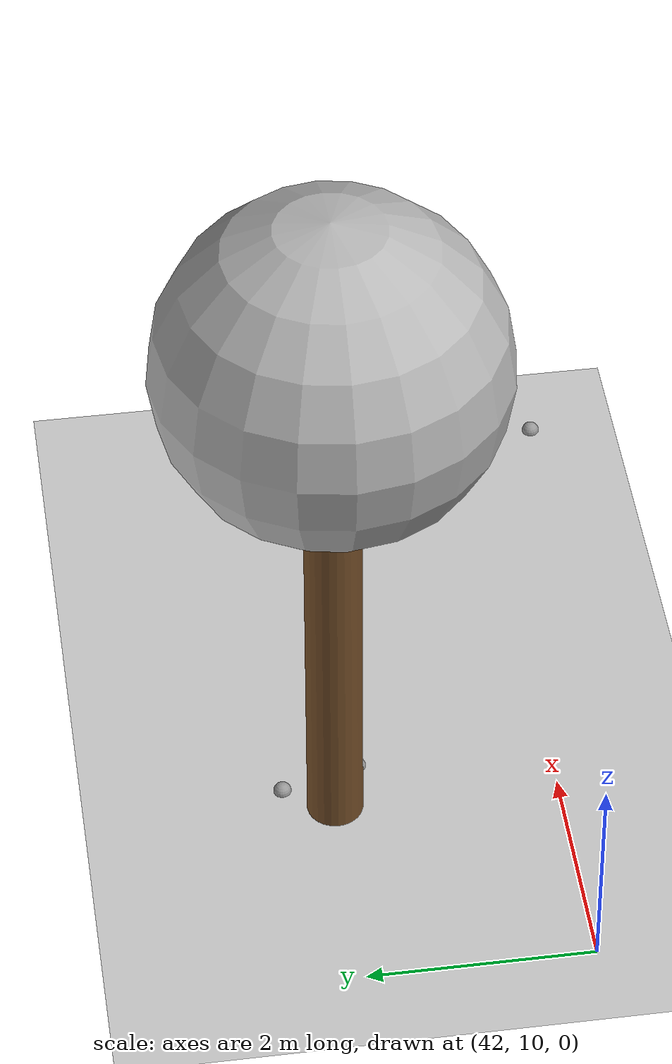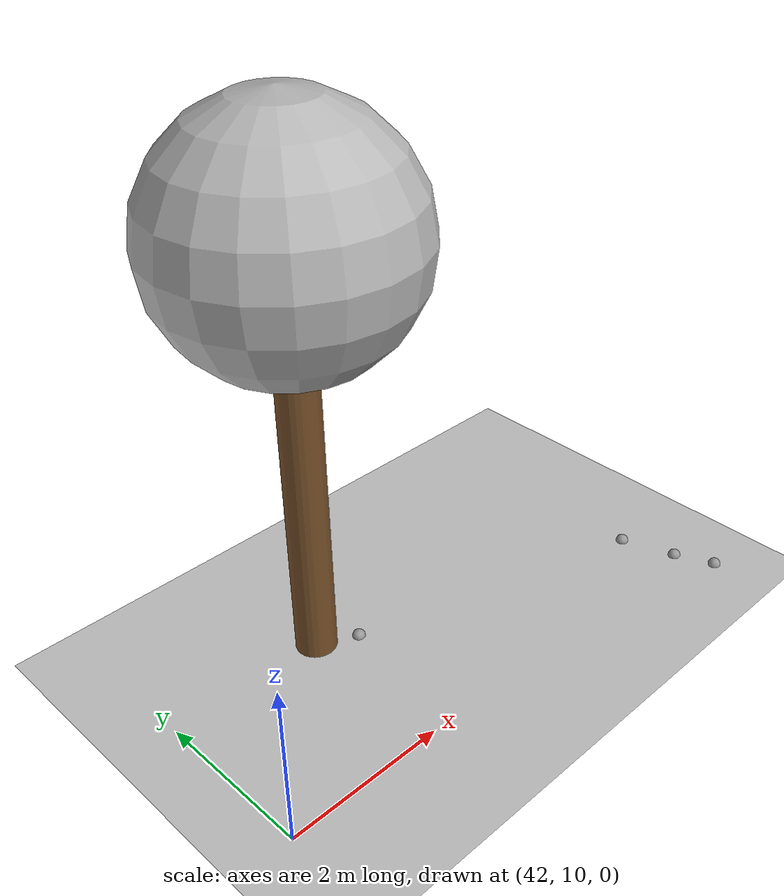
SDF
<sdf version="1.7">
 <world name="default">
  <model name="ground_plane">
   <static>1</static>
   <link name="link">
    <collision name="collision">
     <geometry><plane><normal>0 0 1</normal><size>100 100</size></plane></geometry>
     <surface>
      <contact><collide_bitmask>65535</collide_bitmask></contact>
      <friction><ode><mu>100</mu><mu2>50</mu2></ode></friction>
     </surface>
    </collision>
    <visual name="visual">
     <cast_shadows>0</cast_shadows>
     <geometry><plane><normal>0 0 1</normal><size>100 100</size></plane></geometry>
     <material>
      <script><uri>file://media/materials/scripts/gazebo.material</uri><name>Gazebo/Grey</name></script>
     </material>
    </visual>
   </link>
  </model>
  <model name="tree_simple_64">
   <static>1</static>
   <link name="link">
    <pose>0 0 0.1 0 -0 0</pose>
    <inertial>
     <mass>666</mass>
     <inertia>
      <ixx>0.0861167</ixx>
      <ixy>0</ixy>
      <ixz>0</ixz>
      <iyy>0.0861167</iyy>
      <iyz>0</iyz>
      <izz>0.0861167</izz>
     </inertia>
    </inertial>
    <collision name="collision_trunk">
     <pose>0 0 2 0 -0 0</pose>
     <geometry><cylinder><radius>0.25</radius><length>4</length></cylinder></geometry>
     <surface>
      <contact>
       <poissons_ratio>0.347</poissons_ratio>
       <elastic_modulus>8.8e+09</elastic_modulus>
       <ode><kp>100000</kp><kd>100</kd><max_vel>100</max_vel><min_depth>0.001</min_depth></ode>
      </contact>
      <friction>
       <torsional>
        <coefficient>1</coefficient>
        <use_patch_radius>0</use_patch_radius>
        <surface_radius>0.01</surface_radius>
       </torsional>
      </friction>
     </surface>
    </collision>
    <collision name="collision_treetop">
     <pose>0 0 5.2 0 -0 0</pose>
     <geometry><sphere><radius>1.5</radius></sphere></geometry>
     <surface>
      <contact>
       <poissons_ratio>0.347</poissons_ratio>
       <elastic_modulus>8.8e+09</elastic_modulus>
       <ode><kp>100000</kp><kd>100</kd><max_vel>100</max_vel><min_depth>0.001</min_depth></ode>
      </contact>
      <friction>
       <torsional>
        <coefficient>1</coefficient>
        <use_patch_radius>0</use_patch_radius>
        <surface_radius>0.01</surface_radius>
       </torsional>
      </friction>
     </surface>
    </collision>
    <visual name="trunk">
     <pose>0 0 2 0 -0 0</pose>
     <geometry><cylinder><radius>0.25</radius><length>4</length></cylinder></geometry>
     <material>
      <script>
       <uri>model://tree_simple/scripts</uri>
       <uri>model://tree_simple/materials/textures</uri>
       <name>TreeSimple/Trunk</name>
      </script>
     </material>
    </visual>
    <visual name="treetop">
     <pose>0 0 5.2 0 -0 0</pose>
     <geometry><sphere><radius>1.5</radius></sphere></geometry>
     <material>
      <script>
       <uri>model://tree_simple/scripts</uri>
       <uri>model://tree_simple/materials/textures</uri>
       <name>TreeSimple/Treetop</name>
      </script>
     </material>
    </visual>
   </link>
   <pose>44 12 -0.1 0 -0 0</pose>
  </model>
  <model name="seed_black_46">
   <link name="link">
    <inertial>
     <mass>1</mass>
     <inertia><ixx>0.1</ixx><ixy>0</ixy><ixz>0</ixz><iyy>0.1</iyy><iyz>0</iyz><izz>0.1</izz></inertia>
    </inertial>
    <visual name="visual">
     <geometry><sphere><radius>0.08</radius></sphere></geometry>
     <material>
      <script><name>Gazebo/Grey</name><uri>file://media/materials/scripts/gazebo.material</uri></script>
      <shader type="pixel"><normal_map>__default__</normal_map></shader>
      <ambient>0 0 0 1</ambient>
      <diffuse>0.7 0.7 0.7 1</diffuse>
      <specular>0.01 0.01 0.01 1</specular>
      <emissive>0 0 0 1</emissive>
     </material>
    </visual>
    <collision name="collision">
     <geometry><sphere><radius>0.0005</radius></sphere></geometry>
     <surface>
      <friction>
       <ode><mu>1</mu><mu2>1</mu2><fdir1>0 0 0</fdir1><slip1>0</slip1><slip2>0</slip2></ode>
       <torsional>
        <coefficient>1</coefficient>
        <patch_radius>0</patch_radius>
        <surface_radius>0</surface_radius>
        <use_patch_radius>1</use_patch_radius>
        <ode><slip>0</slip></ode>
       </torsional>
      </friction>
      <bounce><restitution_coefficient>0</restitution_coefficient><threshold>1e+06</threshold></bounce>
      <contact>
       <collide_without_contact>0</collide_without_contact>
       <collide_without_contact_bitmask>1</collide_without_contact_bitmask>
       <collide_bitmask>1</collide_bitmask>
       <ode>
        <soft_cfm>0</soft_cfm>
        <soft_erp>0.2</soft_erp>
        <kp>1e+13</kp>
        <kd>1</kd>
        <max_vel>0.01</max_vel>
        <min_depth>0</min_depth>
       </ode>
       <bullet>
        <split_impulse>1</split_impulse>
        <split_impulse_penetration_threshold>-0.01</split_impulse_penetration_threshold>
        <soft_cfm>0</soft_cfm>
        <soft_erp>0.2</soft_erp>
        <kp>1e+13</kp>
        <kd>1</kd>
       </bullet>
      </contact>
     </surface>
    </collision>
   </link>
   <static>0</static>
   <pose>44.2422 12.4422 0.0005 0 -0 0</pose>
  </model>
  <model name="seed_black_51">
   <link name="link">
    <inertial>
     <mass>1</mass>
     <inertia><ixx>0.1</ixx><ixy>0</ixy><ixz>0</ixz><iyy>0.1</iyy><iyz>0</iyz><izz>0.1</izz></inertia>
    </inertial>
    <visual name="visual">
     <geometry><sphere><radius>0.08</radius></sphere></geometry>
     <material>
      <script><name>Gazebo/Grey</name><uri>file://media/materials/scripts/gazebo.material</uri></script>
      <shader type="pixel"><normal_map>__default__</normal_map></shader>
      <ambient>0 0 0 1</ambient>
      <diffuse>0.7 0.7 0.7 1</diffuse>
      <specular>0.01 0.01 0.01 1</specular>
      <emissive>0 0 0 1</emissive>
     </material>
    </visual>
    <collision name="collision">
     <geometry><sphere><radius>0.0005</radius></sphere></geometry>
     <surface>
      <friction>
       <ode><mu>1</mu><mu2>1</mu2><fdir1>0 0 0</fdir1><slip1>0</slip1><slip2>0</slip2></ode>
       <torsional>
        <coefficient>1</coefficient>
        <patch_radius>0</patch_radius>
        <surface_radius>0</surface_radius>
        <use_patch_radius>1</use_patch_radius>
        <ode><slip>0</slip></ode>
       </torsional>
      </friction>
      <bounce><restitution_coefficient>0</restitution_coefficient><threshold>1e+06</threshold></bounce>
      <contact>
       <collide_without_contact>0</collide_without_contact>
       <collide_without_contact_bitmask>1</collide_without_contact_bitmask>
       <collide_bitmask>1</collide_bitmask>
       <ode>
        <soft_cfm>0</soft_cfm>
        <soft_erp>0.2</soft_erp>
        <kp>1e+13</kp>
        <kd>1</kd>
        <max_vel>0.01</max_vel>
        <min_depth>0</min_depth>
       </ode>
       <bullet>
        <split_impulse>1</split_impulse>
        <split_impulse_penetration_threshold>-0.01</split_impulse_penetration_threshold>
        <soft_cfm>0</soft_cfm>
        <soft_erp>0.2</soft_erp>
        <kp>1e+13</kp>
        <kd>1</kd>
       </bullet>
      </contact>
     </surface>
    </collision>
   </link>
   <static>0</static>
   <pose>44.4478 11.7419 0.0005 0 -0 0</pose>
  </model>
  <model name="seed_black_64">
   <link name="link">
    <inertial>
     <mass>1</mass>
     <inertia><ixx>0.1</ixx><ixy>0</ixy><ixz>0</ixz><iyy>0.1</iyy><iyz>0</iyz><izz>0.1</izz></inertia>
    </inertial>
    <visual name="visual">
     <geometry><sphere><radius>0.08</radius></sphere></geometry>
     <material>
      <script><name>Gazebo/Grey</name><uri>file://media/materials/scripts/gazebo.material</uri></script>
      <shader type="pixel"><normal_map>__default__</normal_map></shader>
      <ambient>0 0 0 1</ambient>
      <diffuse>0.7 0.7 0.7 1</diffuse>
      <specular>0.01 0.01 0.01 1</specular>
      <emissive>0 0 0 1</emissive>
     </material>
    </visual>
    <collision name="collision">
     <geometry><sphere><radius>0.0005</radius></sphere></geometry>
     <surface>
      <friction>
       <ode><mu>1</mu><mu2>1</mu2><fdir1>0 0 0</fdir1><slip1>0</slip1><slip2>0</slip2></ode>
       <torsional>
        <coefficient>1</coefficient>
        <patch_radius>0</patch_radius>
        <surface_radius>0</surface_radius>
        <use_patch_radius>1</use_patch_radius>
        <ode><slip>0</slip></ode>
       </torsional>
      </friction>
      <bounce><restitution_coefficient>0</restitution_coefficient><threshold>1e+06</threshold></bounce>
      <contact>
       <collide_without_contact>0</collide_without_contact>
       <collide_without_contact_bitmask>1</collide_without_contact_bitmask>
       <collide_bitmask>1</collide_bitmask>
       <ode>
        <soft_cfm>0</soft_cfm>
        <soft_erp>0.2</soft_erp>
        <kp>1e+13</kp>
        <kd>1</kd>
        <max_vel>0.01</max_vel>
        <min_depth>0</min_depth>
       </ode>
       <bullet>
        <split_impulse>1</split_impulse>
        <split_impulse_penetration_threshold>-0.01</split_impulse_penetration_threshold>
        <soft_cfm>0</soft_cfm>
        <soft_erp>0.2</soft_erp>
        <kp>1e+13</kp>
        <kd>1</kd>
       </bullet>
      </contact>
     </surface>
    </collision>
   </link>
   <static>0</static>
   <pose>48.6249 9.4519 0.0005 0 -0 0</pose>
  </model>
  <model name="seed_black_69">
   <link name="link">
    <inertial>
     <mass>1</mass>
     <inertia><ixx>0.1</ixx><ixy>0</ixy><ixz>0</ixz><iyy>0.1</iyy><iyz>0</iyz><izz>0.1</izz></inertia>
    </inertial>
    <visual name="visual">
     <geometry><sphere><radius>0.08</radius></sphere></geometry>
     <material>
      <script><name>Gazebo/Grey</name><uri>file://media/materials/scripts/gazebo.material</uri></script>
      <shader type="pixel"><normal_map>__default__</normal_map></shader>
      <ambient>0 0 0 1</ambient>
      <diffuse>0.7 0.7 0.7 1</diffuse>
      <specular>0.01 0.01 0.01 1</specular>
      <emissive>0 0 0 1</emissive>
     </material>
    </visual>
    <collision name="collision">
     <geometry><sphere><radius>0.0005</radius></sphere></geometry>
     <surface>
      <friction>
       <ode><mu>1</mu><mu2>1</mu2><fdir1>0 0 0</fdir1><slip1>0</slip1><slip2>0</slip2></ode>
       <torsional>
        <coefficient>1</coefficient>
        <patch_radius>0</patch_radius>
        <surface_radius>0</surface_radius>
        <use_patch_radius>1</use_patch_radius>
        <ode><slip>0</slip></ode>
       </torsional>
      </friction>
      <bounce><restitution_coefficient>0</restitution_coefficient><threshold>1e+06</threshold></bounce>
      <contact>
       <collide_without_contact>0</collide_without_contact>
       <collide_without_contact_bitmask>1</collide_without_contact_bitmask>
       <collide_bitmask>1</collide_bitmask>
       <ode>
        <soft_cfm>0</soft_cfm>
        <soft_erp>0.2</soft_erp>
        <kp>1e+13</kp>
        <kd>1</kd>
        <max_vel>0.01</max_vel>
        <min_depth>0</min_depth>
       </ode>
       <bullet>
        <split_impulse>1</split_impulse>
        <split_impulse_penetration_threshold>-0.01</split_impulse_penetration_threshold>
        <soft_cfm>0</soft_cfm>
        <soft_erp>0.2</soft_erp>
        <kp>1e+13</kp>
        <kd>1</kd>
       </bullet>
      </contact>
     </surface>
    </collision>
   </link>
   <static>0</static>
   <pose>48.413 9.93548 0.0005 0 -0 0</pose>
  </model>
  <model name="seed_black_70">
   <link name="link">
    <inertial>
     <mass>1</mass>
     <inertia><ixx>0.1</ixx><ixy>0</ixy><ixz>0</ixz><iyy>0.1</iyy><iyz>0</iyz><izz>0.1</izz></inertia>
    </inertial>
    <visual name="visual">
     <geometry><sphere><radius>0.08</radius></sphere></geometry>
     <material>
      <script><name>Gazebo/Grey</name><uri>file://media/materials/scripts/gazebo.material</uri></script>
      <shader type="pixel"><normal_map>__default__</normal_map></shader>
      <ambient>0 0 0 1</ambient>
      <diffuse>0.7 0.7 0.7 1</diffuse>
      <specular>0.01 0.01 0.01 1</specular>
      <emissive>0 0 0 1</emissive>
     </material>
    </visual>
    <collision name="collision">
     <geometry><sphere><radius>0.0005</radius></sphere></geometry>
     <surface>
      <friction>
       <ode><mu>1</mu><mu2>1</mu2><fdir1>0 0 0</fdir1><slip1>0</slip1><slip2>0</slip2></ode>
       <torsional>
        <coefficient>1</coefficient>
        <patch_radius>0</patch_radius>
        <surface_radius>0</surface_radius>
        <use_patch_radius>1</use_patch_radius>
        <ode><slip>0</slip></ode>
       </torsional>
      </friction>
      <bounce><restitution_coefficient>0</restitution_coefficient><threshold>1e+06</threshold></bounce>
      <contact>
       <collide_without_contact>0</collide_without_contact>
       <collide_without_contact_bitmask>1</collide_without_contact_bitmask>
       <collide_bitmask>1</collide_bitmask>
       <ode>
        <soft_cfm>0</soft_cfm>
        <soft_erp>0.2</soft_erp>
        <kp>1e+13</kp>
        <kd>1</kd>
        <max_vel>0.01</max_vel>
        <min_depth>0</min_depth>
       </ode>
       <bullet>
        <split_impulse>1</split_impulse>
        <split_impulse_penetration_threshold>-0.01</split_impulse_penetration_threshold>
        <soft_cfm>0</soft_cfm>
        <soft_erp>0.2</soft_erp>
        <kp>1e+13</kp>
        <kd>1</kd>
       </bullet>
      </contact>
     </surface>
    </collision>
   </link>
   <static>0</static>
   <pose>48.183 10.617 0.0005 0 -0 0</pose>
  </model>
 </world>
</sdf>
